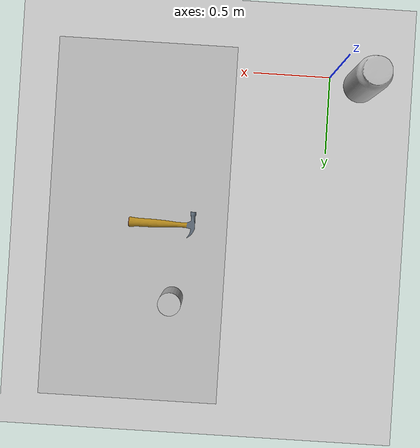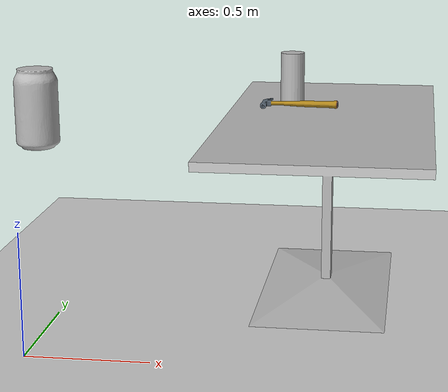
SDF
<sdf version="1.6">
 <world name="default">
  <light name="sun" type="directional">
   <pose>0 0 10 0 -0 0</pose>
   <diffuse>0.8 0.8 0.8 1</diffuse>
   <specular>0.2 0.2 0.2 1</specular>
   <attenuation>
    <range>1000</range>
    <constant>0.9</constant>
    <linear>0.01</linear>
    <quadratic>0.001</quadratic>
   </attenuation>
   <direction>-0.5 0.1 -0.9</direction>
  </light>
  <model name="ground_plane">
   <static>1</static>
   <link name="link">
    <collision name="collision">
     <geometry><plane><normal>0 0 1</normal><size>100 100</size></plane></geometry>
     <surface><friction><ode><mu>100</mu><mu2>50</mu2></ode></friction></surface>
    </collision>
    <visual name="visual">
     <cast_shadows>0</cast_shadows>
     <geometry><plane><normal>0 0 1</normal><size>100 100</size></plane></geometry>
     <material>
      <script><uri>file://media/materials/scripts/gazebo.material</uri><name>Gazebo/Grey</name></script>
     </material>
    </visual>
   </link>
  </model>
  <gravity>0 0 -9.8</gravity>
  <magnetic_field>6e-06 2.3e-05 -4.2e-05</magnetic_field>
  <atmosphere type="adiabatic"/>
  <physics name="default_physics" default="0" type="ode">
   <max_step_size>0.001</max_step_size>
   <real_time_factor>1</real_time_factor>
   <real_time_update_rate>1000</real_time_update_rate>
  </physics>
  <scene><ambient>0.4 0.4 0.4 1</ambient><background>0.7 0.7 0.7 1</background><shadows>1</shadows></scene>
  <spherical_coordinates>
   <surface_model>EARTH_WGS84</surface_model>
   <latitude_deg>0</latitude_deg>
   <longitude_deg>0</longitude_deg>
   <elevation>0</elevation>
   <heading_deg>0</heading_deg>
  </spherical_coordinates>
  <model name="beer">
   <link name="link">
    <pose>0 0 0.115 0 -0 0</pose>
    <inertial>
     <mass>0.39</mass>
     <inertia><ixx>0.00058</ixx><ixy>0</ixy><ixz>0</ixz><iyy>0.00058</iyy><iyz>0</iyz><izz>0.00019</izz></inertia>
    </inertial>
    <collision name="collision">
     <geometry><cylinder><radius>0.055</radius><length>0.23</length></cylinder></geometry>
    </collision>
    <visual name="visual">
     <geometry><cylinder><radius>0.055</radius><length>0.23</length></cylinder></geometry>
     <material>
      <script>
       <uri>model://beer/materials/scripts</uri>
       <uri>model://beer/materials/textures</uri>
       <name>Beer/Diffuse</name>
      </script>
     </material>
    </visual>
   </link>
   <pose>0.900901 1.3834 0.77499 1e-06 -2.7e-05 -0.001895</pose>
  </model>
  <model name="hammer">
   <static>1</static>
   <link name="link">
    <collision name="collision">
     <geometry><mesh><uri>model://hammer/meshes/hammer.dae</uri><scale>1 1 1</scale></mesh></geometry>
    </collision>
    <visual name="visual">
     <geometry><mesh><uri>model://hammer/meshes/hammer.dae</uri><scale>1 1 1</scale></mesh></geometry>
    </visual>
   </link>
   <pose>0.900901 1 0.833935 0 -0 1.57079632679</pose>
  </model>
  <model name="cafe_table">
   <static>1</static>
   <link name="link">
    <collision name="surface">
     <pose>0 0 0.755 0 -0 0</pose>
     <geometry><box><size>0.913 0.913 0.04</size></box></geometry>
    </collision>
    <collision name="column">
     <pose>0 0 0.37 0 -0 0</pose>
     <geometry><box><size>0.042 0.042 0.74</size></box></geometry>
    </collision>
    <collision name="base">
     <pose>0 0 0.02 0 -0 0</pose>
     <geometry><box><size>0.56 0.56 0.04</size></box></geometry>
    </collision>
    <visual name="visual">
     <geometry><mesh><uri>model://cafe_table/meshes/cafe_table.dae</uri><scale>2 1 1</scale></mesh></geometry>
    </visual>
   </link>
   <pose>1.1 1 0 0 -0 1.57079632679</pose>
  </model>
  <model name="soda_can">
   <link name="link">
    <inertial>
     <pose>-0.01 -0.012 0.15 0 -0 0</pose>
     <mass>0.39</mass>
     <inertia><ixx>0.00058</ixx><ixy>0</ixy><ixz>0</ixz><iyy>0.00058</iyy><iyz>0</iyz><izz>0.00019</izz></inertia>
    </inertial>
    <collision name="collision">
     <pose>0 0 -0.46 0 -0 0</pose>
     <geometry><mesh><uri>model://soda_can/meshes/soda_can.dae</uri></mesh></geometry>
     <surface>
      <friction><ode><mu>1</mu><mu2>1</mu2></ode></friction>
      <contact><ode><kp>1e+07</kp><kd>1</kd><min_depth>0.001</min_depth><max_vel>0.1</max_vel></ode></contact>
     </surface>
    </collision>
    <visual name="visual">
     <pose>0 0 -0.46 0 -0 0</pose>
     <geometry><mesh><uri>model://soda_can/meshes/soda_can.dae</uri></mesh></geometry>
    </visual>
   </link>
   <pose>0.016907 0.270599 0.770683 0.001232 -0.009904 0.650851</pose>
  </model>
 </world>
</sdf>
